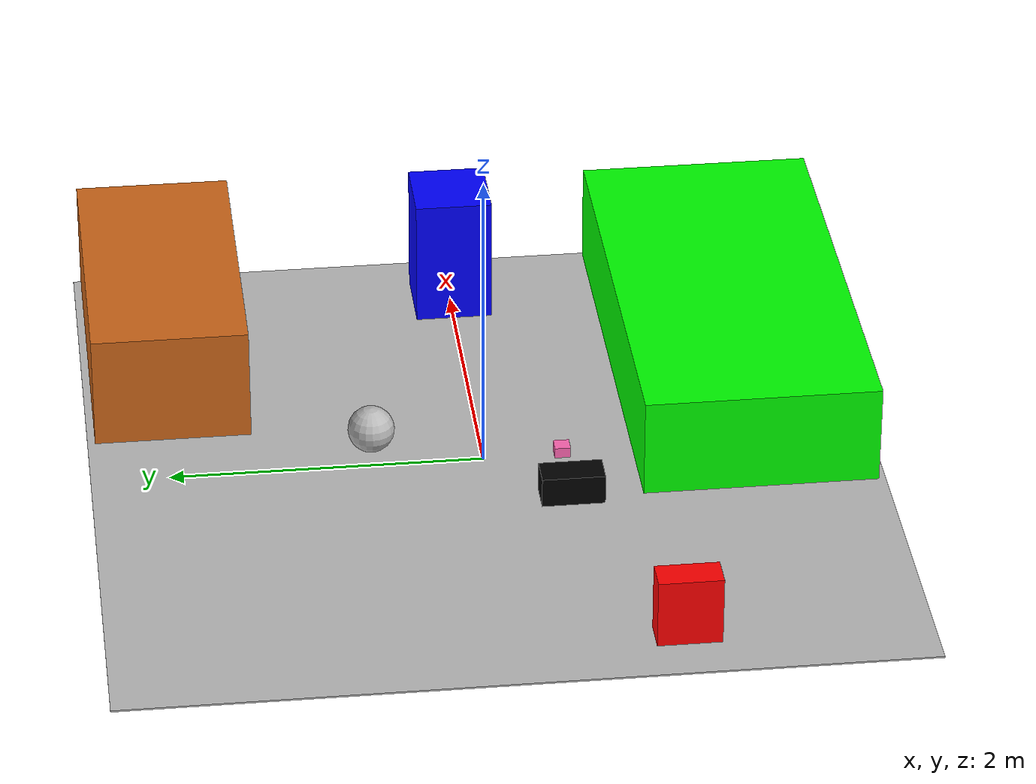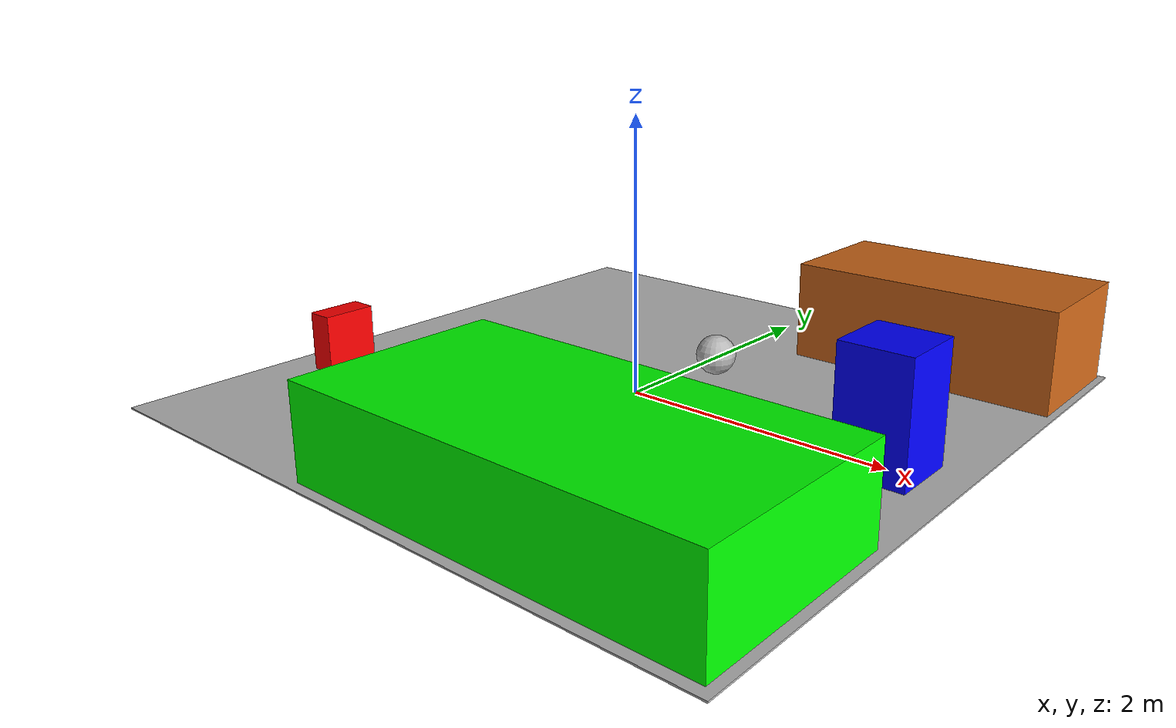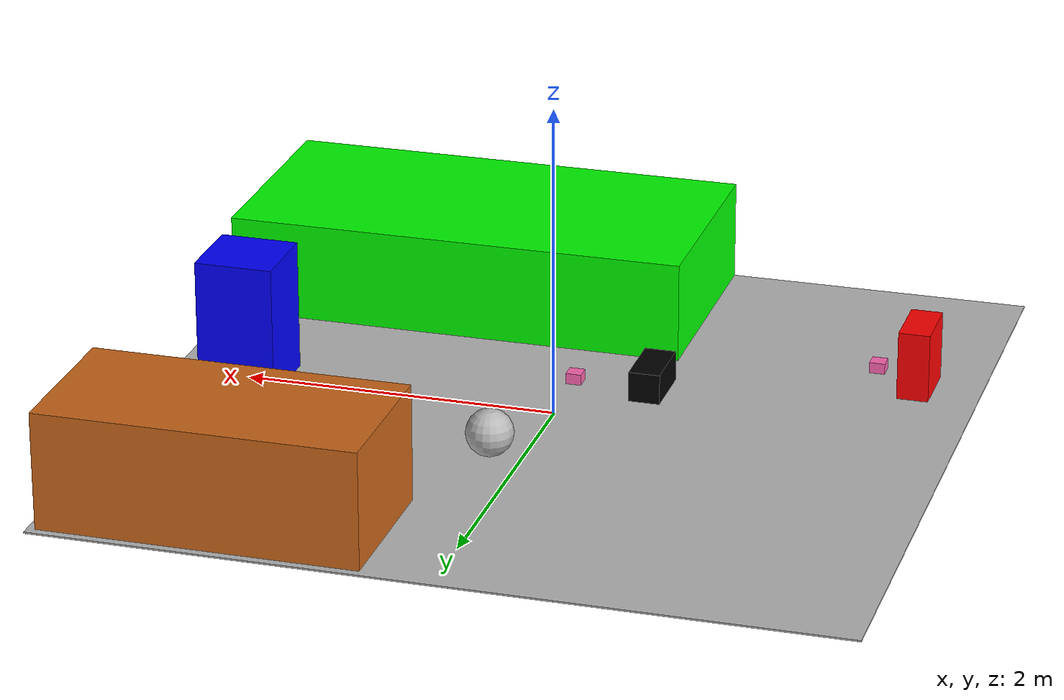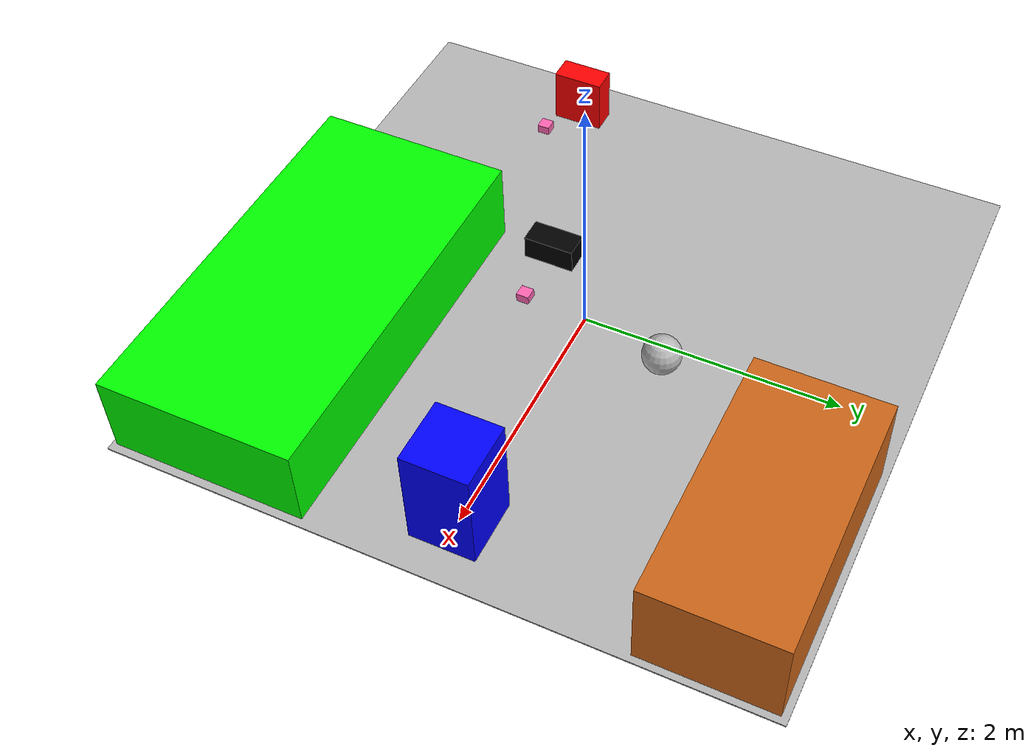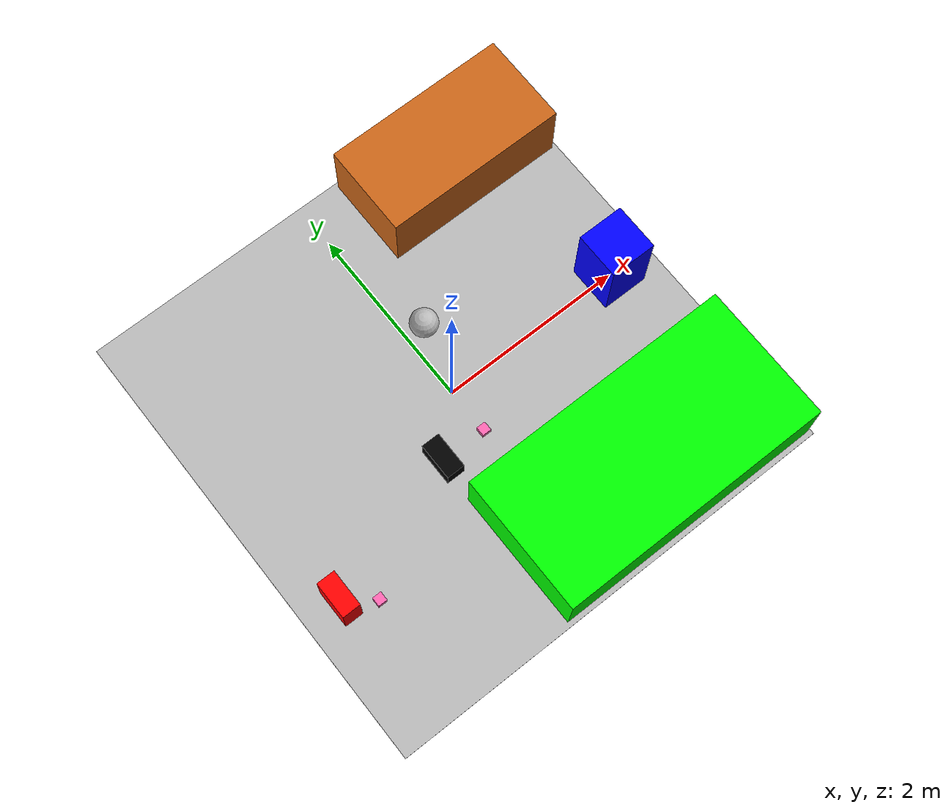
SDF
<sdf version="1.6">
 <world name="room">
  <include><uri>model://sun</uri></include>
  <model name="floor">
   <static>true</static>
   <link name="floor_link">
    <visual name="floor_visual"><geometry><box><size>5 5 0.01</size></box></geometry></visual>
    <collision name="floor_collision"><geometry><box><size>5 5 0.01</size></box></geometry></collision>
   </link>
  </model>
  <model name="desk">
   <static>true</static>
   <pose>1.45 1.95 0.375 0 0 0</pose>
   <link name="desk_link">
    <visual name="desk_visual">
     <geometry><box><size>2 1 0.75</size></box></geometry>
     <material>
      <ambient>0.8 0.4 0.1 1</ambient>
      <diffuse>0.8 0.4 0.1 1</diffuse>
      <specular>0.5 0.5 0.5 1</specular>
     </material>
    </visual>
    <collision name="desk_collision"><geometry><box><size>2 1 0.75</size></box></geometry></collision>
   </link>
  </model>
  <model name="bed">
   <static>true</static>
   <pose>0.95 -1.7 0.35 0 0 0</pose>
   <link name="bed_link">
    <visual name="bed_visual">
     <geometry><box><size>3 1.5 0.65</size></box></geometry>
     <material><ambient>0 1 0 1</ambient><diffuse>0 1 0 1</diffuse></material>
    </visual>
    <collision name="bed_collision"><geometry><box><size>3 1.5 0.65</size></box></geometry></collision>
   </link>
  </model>
  <model name="ball">
   <static>true</static>
   <pose>0.2 0.7 0.15 0 0 0</pose>
   <link name="ball_link">
    <visual name="ball_visual"><geometry><sphere><radius>0.15</radius></sphere></geometry></visual>
    <material><ambient>1 1 1 1</ambient><diffuse>1 1 1 1</diffuse></material>
    <collision name="ball_collision"><geometry><sphere><radius>0.15</radius></sphere></geometry></collision>
   </link>
  </model>
  <model name="backpack">
   <static>true</static>
   <pose>-2.1 -1 0.2 0 0 0</pose>
   <link name="backpack_link">
    <visual name="backpack_visual">
     <geometry><box><size>0.2 0.4 0.5</size></box></geometry>
     <material><ambient>1 0 0 1</ambient><diffuse>1 0 0 1</diffuse></material>
    </visual>
    <collision name="backpack_collision"><geometry><box><size>0.2 0.4 0.6</size></box></geometry></collision>
   </link>
  </model>
  <model name="chair">
   <static>true</static>
   <pose>2 0 0.4 0 0 0</pose>
   <link name="chair_link">
    <visual name="chair_visual">
     <geometry><box><size>0.5 0.5 0.9</size></box></geometry>
     <material><ambient>0 0 1 1</ambient><diffuse>0 0 1 1</diffuse></material>
    </visual>
    <collision name="chair_collision"><geometry><box><size>0.5 0.5 0.9</size></box></geometry></collision>
   </link>
  </model>
  <model name="dumbell">
   <static>true</static>
   <pose>-0.5 -0.5 0.1 0 0 0</pose>
   <link name="dumbell_link">
    <visual name="dumbell_visual">
     <geometry><box><size>0.2 0.4 0.2</size></box></geometry>
     <material><ambient>0 0 0 1</ambient><diffuse>0 0 0 1</diffuse></material>
    </visual>
    <collision name="dumbell_collision"><geometry><box><size>0.2 0.4 0.2</size></box></geometry></collision>
   </link>
  </model>
  <model name="trash1">
   <static>true</static>
   <pose>-1.8 -1.2 0.025 0 0 0</pose>
   <link name="trash1_link">
    <visual name="trash1_visual">
     <geometry><box><size>0.1 0.1 0.1</size></box></geometry>
     <material>
      <ambient>1.0 0.4 0.7 1</ambient>
      <diffuse>1.0 0.4 0.7 1</diffuse>
      <specular>0.5 0.5 0.5 1</specular>
     </material>
    </visual>
   </link>
  </model>
  <model name="trash3">
   <static>true</static>
   <pose>0 -0.5 0.025 0 0 0</pose>
   <link name="trash3_link">
    <visual name="trash3_visual">
     <geometry><box><size>0.1 0.1 0.1</size></box></geometry>
     <material>
      <ambient>1.0 0.4 0.7 1</ambient>
      <diffuse>1.0 0.4 0.7 1</diffuse>
      <specular>0.5 0.5 0.5 1</specular>
     </material>
    </visual>
   </link>
  </model>
 </world>
</sdf>
